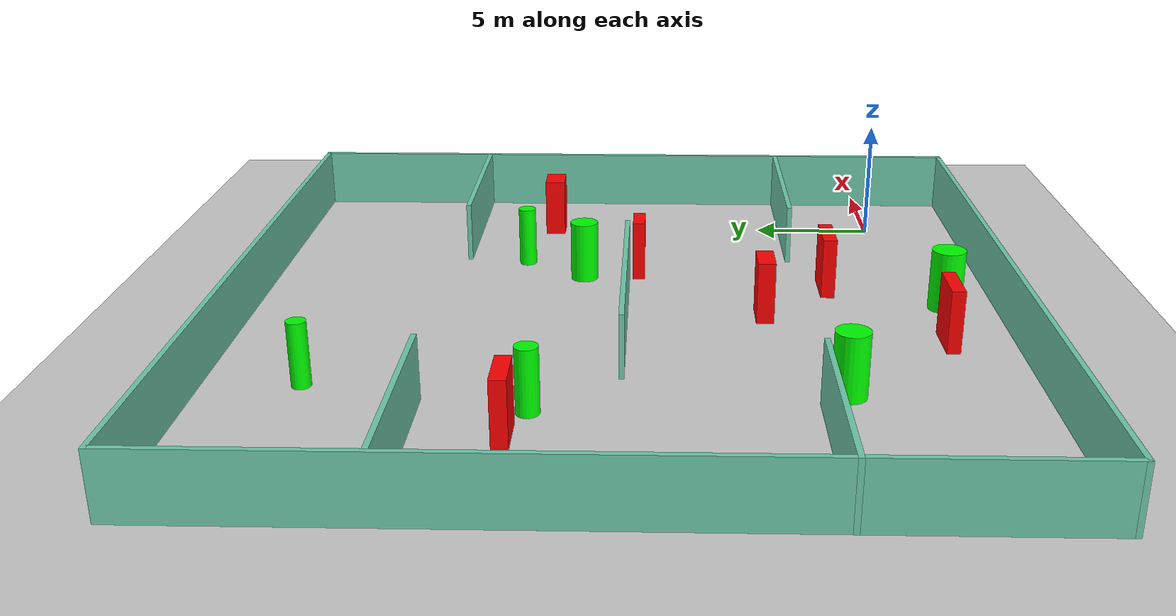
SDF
<sdf version="1.7">
 <world name="default">
  <light name="sun" type="directional">
   <pose>0 0 10 0 -0 0</pose>
   <diffuse>0.8 0.8 0.8 1</diffuse>
   <specular>0.2 0.2 0.2 1</specular>
   <attenuation>
    <range>1000</range>
    <constant>0.9</constant>
    <linear>0.01</linear>
    <quadratic>0.001</quadratic>
   </attenuation>
   <direction>-0.5 0.1 -0.9</direction>
   <spot><inner_angle>0</inner_angle><outer_angle>0</outer_angle><falloff>0</falloff></spot>
  </light>
  <model name="ground_plane">
   <static>1</static>
   <link name="link">
    <collision name="collision">
     <geometry><plane><normal>0 0 1</normal><size>100 100</size></plane></geometry>
     <surface>
      <contact><collide_bitmask>65535</collide_bitmask></contact>
      <friction><ode><mu>100</mu><mu2>50</mu2></ode></friction>
     </surface>
    </collision>
    <visual name="visual">
     <cast_shadows>0</cast_shadows>
     <geometry><plane><normal>0 0 1</normal><size>100 100</size></plane></geometry>
     <material>
      <script><uri>file://media/materials/scripts/gazebo.material</uri><name>Gazebo/Grey</name></script>
     </material>
    </visual>
   </link>
  </model>
  <gravity>0 0 -9.8</gravity>
  <magnetic_field>6e-06 2.3e-05 -4.2e-05</magnetic_field>
  <atmosphere type="adiabatic"/>
  <physics type="ode">
   <max_step_size>0.001</max_step_size>
   <real_time_factor>1</real_time_factor>
   <real_time_update_rate>1000</real_time_update_rate>
  </physics>
  <scene><ambient>0.4 0.4 0.4 1</ambient><background>0.7 0.7 0.7 1</background><shadows>1</shadows></scene>
  <spherical_coordinates>
   <surface_model>EARTH_WGS84</surface_model>
   <latitude_deg>0</latitude_deg>
   <longitude_deg>0</longitude_deg>
   <elevation>0</elevation>
   <heading_deg>0</heading_deg>
  </spherical_coordinates>
  <model name="my_base_walls">
   <link name="Wall_10">
    <collision name="Wall_10_Collision">
     <geometry><box><size>8.2 0.2 2.5</size></box></geometry>
     <pose>0 0 1.25 0 -0 0</pose>
    </collision>
    <visual name="Wall_10_Visual">
     <pose>0 0 1.25 0 -0 0</pose>
     <geometry><box><size>8.2 0.2 2.5</size></box></geometry>
     <material>
      <script><uri>file://media/materials/scripts/gazebo.material</uri><name>Gazebo/Grey</name></script>
      <ambient>0.435294 0.796078 0.67451 1</ambient>
     </material>
     <meta><layer>0</layer></meta>
    </visual>
    <pose>-11 -7 0 0 -0 0</pose>
   </link>
   <link name="Wall_12">
    <collision name="Wall_12_Collision">
     <geometry><box><size>8.2 0.2 2.5</size></box></geometry>
     <pose>0 0 1.25 0 -0 0</pose>
    </collision>
    <visual name="Wall_12_Visual">
     <pose>0 0 1.25 0 -0 0</pose>
     <geometry><box><size>8.2 0.2 2.5</size></box></geometry>
     <material>
      <script><uri>file://media/materials/scripts/gazebo.material</uri><name>Gazebo/Grey</name></script>
      <ambient>0.435294 0.796078 0.67451 1</ambient>
     </material>
     <meta><layer>0</layer></meta>
    </visual>
    <pose>-11 7 0 0 -0 0</pose>
   </link>
   <link name="Wall_14">
    <collision name="Wall_14_Collision">
     <geometry><box><size>8.2 0.2 2.5</size></box></geometry>
     <pose>0 0 1.25 0 -0 0</pose>
    </collision>
    <visual name="Wall_14_Visual">
     <pose>0 0 1.25 0 -0 0</pose>
     <geometry><box><size>8.2 0.2 2.5</size></box></geometry>
     <material>
      <script><uri>file://media/materials/scripts/gazebo.material</uri><name>Gazebo/Grey</name></script>
      <ambient>0.435294 0.796078 0.67451 1</ambient>
     </material>
     <meta><layer>0</layer></meta>
    </visual>
    <pose>11 7 0 0 -0 3.14159</pose>
   </link>
   <link name="Wall_16">
    <collision name="Wall_16_Collision">
     <geometry><box><size>10.2 0.2 2.5</size></box></geometry>
     <pose>0 0 1.25 0 -0 0</pose>
    </collision>
    <visual name="Wall_16_Visual">
     <pose>0 0 1.25 0 -0 0</pose>
     <geometry><box><size>10.2 0.2 2.5</size></box></geometry>
     <material>
      <script><uri>file://media/materials/scripts/gazebo.material</uri><name>Gazebo/Grey</name></script>
      <ambient>0.435294 0.796078 0.67451 1</ambient>
     </material>
     <meta><layer>0</layer></meta>
    </visual>
    <pose>0 0 0 0 -0 3.14159</pose>
   </link>
   <link name="Wall_2">
    <collision name="Wall_2_Collision">
     <geometry><box><size>30.2 0.2 2.5</size></box></geometry>
     <pose>0 0 1.25 0 -0 0</pose>
    </collision>
    <visual name="Wall_2_Visual">
     <pose>0 0 1.25 0 -0 0</pose>
     <geometry><box><size>30.2 0.2 2.5</size></box></geometry>
     <material>
      <script><uri>file://media/materials/scripts/gazebo.material</uri><name>Gazebo/Grey</name></script>
      <ambient>0.435294 0.796078 0.67451 1</ambient>
     </material>
     <meta><layer>0</layer></meta>
    </visual>
    <pose>0 -15 0 0 -0 3.14159</pose>
   </link>
   <link name="Wall_3">
    <collision name="Wall_3_Collision">
     <geometry><box><size>30.2 0.2 2.5</size></box></geometry>
     <pose>0 0 1.25 0 -0 0</pose>
    </collision>
    <visual name="Wall_3_Visual">
     <pose>0 0 1.25 0 -0 0</pose>
     <geometry><box><size>30.2 0.2 2.5</size></box></geometry>
     <material>
      <script><uri>file://media/materials/scripts/gazebo.material</uri><name>Gazebo/Grey</name></script>
      <ambient>0.435294 0.796078 0.67451 1</ambient>
     </material>
     <meta><layer>0</layer></meta>
    </visual>
    <pose>-15 0 0 0 -0 1.5708</pose>
   </link>
   <link name="Wall_4">
    <collision name="Wall_4_Collision">
     <geometry><box><size>30.2 0.2 2.5</size></box></geometry>
     <pose>0 0 1.25 0 -0 0</pose>
    </collision>
    <visual name="Wall_4_Visual">
     <pose>0 0 1.25 0 -0 0</pose>
     <geometry><box><size>30.2 0.2 2.5</size></box></geometry>
     <material>
      <script><uri>file://media/materials/scripts/gazebo.material</uri><name>Gazebo/Grey</name></script>
      <ambient>0.435294 0.796078 0.67451 1</ambient>
     </material>
     <meta><layer>0</layer></meta>
    </visual>
    <pose>0 15 0 0 -0 0</pose>
   </link>
   <link name="Wall_6">
    <collision name="Wall_6_Collision">
     <geometry><box><size>30.2 0.2 2.5</size></box></geometry>
     <pose>0 0 1.25 0 -0 0</pose>
    </collision>
    <visual name="Wall_6_Visual">
     <pose>0 0 1.25 0 -0 0</pose>
     <geometry><box><size>30.2 0.2 2.5</size></box></geometry>
     <material>
      <script><uri>file://media/materials/scripts/gazebo.material</uri><name>Gazebo/Grey</name></script>
      <ambient>0.435294 0.796078 0.67451 1</ambient>
     </material>
     <meta><layer>0</layer></meta>
    </visual>
    <pose>15 0 0 0 -0 1.5708</pose>
   </link>
   <link name="Wall_8">
    <collision name="Wall_8_Collision">
     <geometry><box><size>8.2 0.2 2.5</size></box></geometry>
     <pose>0 0 1.25 0 -0 0</pose>
    </collision>
    <visual name="Wall_8_Visual">
     <pose>0 0 1.25 0 -0 0</pose>
     <geometry><box><size>8.2 0.2 2.5</size></box></geometry>
     <material>
      <script><uri>file://media/materials/scripts/gazebo.material</uri><name>Gazebo/Grey</name></script>
      <ambient>0.435294 0.796078 0.67451 1</ambient>
     </material>
     <meta><layer>0</layer></meta>
    </visual>
    <pose>11 -7 0 0 -0 3.14159</pose>
   </link>
   <static>1</static>
   <pose>-11 11 0 0 -0 0</pose>
  </model>
  <model name="cylinder1">
   <static>1</static>
   <link name="link">
    <inertial>
     <mass>1</mass>
     <inertia><ixx>0.5</ixx><ixy>0</ixy><ixz>0</ixz><iyy>0.5</iyy><iyz>0</iyz><izz>1</izz></inertia>
    </inertial>
    <collision name="collision">
     <geometry><cylinder><radius>0.367069852013423</radius><length>2.5</length></cylinder></geometry>
    </collision>
    <visual name="visual">
     <geometry><cylinder><radius>0.367069852013423</radius><length>2.5</length></cylinder></geometry>
     <material>
      <ambient>0 1 0 1</ambient>
      <diffuse>0 1 0 1</diffuse>
      <specular>0.1 0.1 0.1 1</specular>
      <emissive>0 0 0 0</emissive>
     </material>
    </visual>
   </link>
   <pose>-4.448085351700758 15.397398276765575 1.25 0 0 0</pose>
  </model>
  <model name="cylinder2">
   <static>1</static>
   <link name="link">
    <inertial>
     <mass>1</mass>
     <inertia><ixx>0.5</ixx><ixy>0</ixy><ixz>0</ixz><iyy>0.5</iyy><iyz>0</iyz><izz>1</izz></inertia>
    </inertial>
    <collision name="collision">
     <geometry><cylinder><radius>0.362198303375764</radius><length>2.5</length></cylinder></geometry>
    </collision>
    <visual name="visual">
     <geometry><cylinder><radius>0.362198303375764</radius><length>2.5</length></cylinder></geometry>
     <material>
      <ambient>0 1 0 1</ambient>
      <diffuse>0 1 0 1</diffuse>
      <specular>0.1 0.1 0.1 1</specular>
      <emissive>0 0 0 0</emissive>
     </material>
    </visual>
   </link>
   <pose>-16.89805484482472 22.304167650159698 1.25 0 0 0</pose>
  </model>
  <model name="cylinder3">
   <static>1</static>
   <link name="link">
    <inertial>
     <mass>1</mass>
     <inertia><ixx>0.5</ixx><ixy>0</ixy><ixz>0</ixz><iyy>0.5</iyy><iyz>0</iyz><izz>1</izz></inertia>
    </inertial>
    <collision name="collision">
     <geometry><cylinder><radius>0.4285885763570805</radius><length>2.5</length></cylinder></geometry>
    </collision>
    <visual name="visual">
     <geometry><cylinder><radius>0.4285885763570805</radius><length>2.5</length></cylinder></geometry>
     <material>
      <ambient>0 1 0 1</ambient>
      <diffuse>0 1 0 1</diffuse>
      <specular>0.1 0.1 0.1 1</specular>
      <emissive>0 0 0 0</emissive>
     </material>
    </visual>
   </link>
   <pose>-18.79894298760866 14.098937882373633 1.25 0 0 0</pose>
  </model>
  <model name="cylinder4">
   <static>1</static>
   <link name="link">
    <inertial>
     <mass>1</mass>
     <inertia><ixx>0.5</ixx><ixy>0</ixy><ixz>0</ixz><iyy>0.5</iyy><iyz>0</iyz><izz>1</izz></inertia>
    </inertial>
    <collision name="collision">
     <geometry><cylinder><radius>0.6409084124452924</radius><length>2.5</length></cylinder></geometry>
    </collision>
    <visual name="visual">
     <geometry><cylinder><radius>0.6409084124452924</radius><length>2.5</length></cylinder></geometry>
     <material>
      <ambient>0 1 0 1</ambient>
      <diffuse>0 1 0 1</diffuse>
      <specular>0.1 0.1 0.1 1</specular>
      <emissive>0 0 0 0</emissive>
     </material>
    </visual>
   </link>
   <pose>-17.301324212657303 3.0287428750485006 1.25 0 0 0</pose>
  </model>
  <model name="cylinder5">
   <static>1</static>
   <link name="link">
    <inertial>
     <mass>1</mass>
     <inertia><ixx>0.5</ixx><ixy>0</ixy><ixz>0</ixz><iyy>0.5</iyy><iyz>0</iyz><izz>1</izz></inertia>
    </inertial>
    <collision name="collision">
     <geometry><cylinder><radius>0.674724251356913</radius><length>2.5</length></cylinder></geometry>
    </collision>
    <visual name="visual">
     <geometry><cylinder><radius>0.674724251356913</radius><length>2.5</length></cylinder></geometry>
     <material>
      <ambient>0 1 0 1</ambient>
      <diffuse>0 1 0 1</diffuse>
      <specular>0.1 0.1 0.1 1</specular>
      <emissive>0 0 0 0</emissive>
     </material>
    </visual>
   </link>
   <pose>-9.197245906305154 -1.875480348172966 1.25 0 0 0</pose>
  </model>
  <model name="cylinder6">
   <static>1</static>
   <link name="link">
    <inertial>
     <mass>1</mass>
     <inertia><ixx>0.5</ixx><ixy>0</ixy><ixz>0</ixz><iyy>0.5</iyy><iyz>0</iyz><izz>1</izz></inertia>
    </inertial>
    <collision name="collision">
     <geometry><cylinder><radius>0.5736063476227147</radius><length>2.5</length></cylinder></geometry>
    </collision>
    <visual name="visual">
     <geometry><cylinder><radius>0.5736063476227147</radius><length>2.5</length></cylinder></geometry>
     <material>
      <ambient>0 1 0 1</ambient>
      <diffuse>0 1 0 1</diffuse>
      <specular>0.1 0.1 0.1 1</specular>
      <emissive>0 0 0 0</emissive>
     </material>
    </visual>
   </link>
   <pose>-6.184313187044964 12.823459721345811 1.25 0 0 0</pose>
  </model>
  <model name="box1">
   <static>1</static>
   <link name="link">
    <inertial>
     <mass>1</mass>
     <inertia><ixx>0.083</ixx><ixy>0</ixy><ixz>0</ixz><iyy>0.083</iyy><iyz>0</iyz><izz>0.083</izz></inertia>
    </inertial>
    <collision name="collision">
     <geometry><box><size>1.9961732961989473 0.5317395829629565 2.5</size></box></geometry>
    </collision>
    <visual name="visual">
     <geometry><box><size>1.9961732961989473 0.5317395829629565 2.5</size></box></geometry>
     <material>
      <ambient>1 0 0 1</ambient>
      <diffuse>1 0 0 1</diffuse>
      <specular>0.1 0.1 0.1 1</specular>
      <emissive>0 0 0 0</emissive>
     </material>
    </visual>
    <sensor name="my_contact" type="contact">
     <contact><collision>box_collision</collision><topic>__default_topic__</topic></contact>
    </sensor>
   </link>
   <pose>-12.674665646676951 -1.3369426640033923 1.25 0 0 0</pose>
  </model>
  <model name="box2">
   <static>1</static>
   <link name="link">
    <inertial>
     <mass>1</mass>
     <inertia><ixx>0.083</ixx><ixy>0</ixy><ixz>0</ixz><iyy>0.083</iyy><iyz>0</iyz><izz>0.083</izz></inertia>
    </inertial>
    <collision name="collision">
     <geometry><box><size>1.4977476039321345 0.6974433565123367 2.5</size></box></geometry>
    </collision>
    <visual name="visual">
     <geometry><box><size>1.4977476039321345 0.6974433565123367 2.5</size></box></geometry>
     <material>
      <ambient>1 0 0 1</ambient>
      <diffuse>1 0 0 1</diffuse>
      <specular>0.1 0.1 0.1 1</specular>
      <emissive>0 0 0 0</emissive>
     </material>
    </visual>
    <sensor name="my_contact" type="contact">
     <contact><collision>box_collision</collision><topic>__default_topic__</topic></contact>
    </sensor>
   </link>
   <pose>-10.252880223473841 5.483111629689446 1.25 0 0 0</pose>
  </model>
  <model name="box3">
   <static>1</static>
   <link name="link">
    <inertial>
     <mass>1</mass>
     <inertia><ixx>0.083</ixx><ixy>0</ixy><ixz>0</ixz><iyy>0.083</iyy><iyz>0</iyz><izz>0.083</izz></inertia>
    </inertial>
    <collision name="collision">
     <geometry><box><size>1.3670193324697553 0.5068722257663973 2.5</size></box></geometry>
    </collision>
    <visual name="visual">
     <geometry><box><size>1.3670193324697553 0.5068722257663973 2.5</size></box></geometry>
     <material>
      <ambient>1 0 0 1</ambient>
      <diffuse>1 0 0 1</diffuse>
      <specular>0.1 0.1 0.1 1</specular>
      <emissive>0 0 0 0</emissive>
     </material>
    </visual>
    <sensor name="my_contact" type="contact">
     <contact><collision>box_collision</collision><topic>__default_topic__</topic></contact>
    </sensor>
   </link>
   <pose>-5.628456962858753 10.510572991885917 1.25 0 0 0</pose>
  </model>
  <model name="box4">
   <static>1</static>
   <link name="link">
    <inertial>
     <mass>1</mass>
     <inertia><ixx>0.083</ixx><ixy>0</ixy><ixz>0</ixz><iyy>0.083</iyy><iyz>0</iyz><izz>0.083</izz></inertia>
    </inertial>
    <collision name="collision">
     <geometry><box><size>1.346499112795014 0.8647912054107886 2.5</size></box></geometry>
    </collision>
    <visual name="visual">
     <geometry><box><size>1.346499112795014 0.8647912054107886 2.5</size></box></geometry>
     <material>
      <ambient>1 0 0 1</ambient>
      <diffuse>1 0 0 1</diffuse>
      <specular>0.1 0.1 0.1 1</specular>
      <emissive>0 0 0 0</emissive>
     </material>
    </visual>
    <sensor name="my_contact" type="contact">
     <contact><collision>box_collision</collision><topic>__default_topic__</topic></contact>
    </sensor>
   </link>
   <pose>-0.004142734505567347 14.467035596267845 1.25 0 0 0</pose>
  </model>
  <model name="box5">
   <static>1</static>
   <link name="link">
    <inertial>
     <mass>1</mass>
     <inertia><ixx>0.083</ixx><ixy>0</ixy><ixz>0</ixz><iyy>0.083</iyy><iyz>0</iyz><izz>0.083</izz></inertia>
    </inertial>
    <collision name="collision">
     <geometry><box><size>2.0549464020290444 0.5621148098704136 2.5</size></box></geometry>
    </collision>
    <visual name="visual">
     <geometry><box><size>2.0549464020290444 0.5621148098704136 2.5</size></box></geometry>
     <material>
      <ambient>1 0 0 1</ambient>
      <diffuse>1 0 0 1</diffuse>
      <specular>0.1 0.1 0.1 1</specular>
      <emissive>0 0 0 0</emissive>
     </material>
    </visual>
    <sensor name="my_contact" type="contact">
     <contact><collision>box_collision</collision><topic>__default_topic__</topic></contact>
    </sensor>
   </link>
   <pose>-7.232169273002665 2.716874320109145 1.25 0 0 0</pose>
  </model>
  <model name="box6">
   <static>1</static>
   <link name="link">
    <inertial>
     <mass>1</mass>
     <inertia><ixx>0.083</ixx><ixy>0</ixy><ixz>0</ixz><iyy>0.083</iyy><iyz>0</iyz><izz>0.083</izz></inertia>
    </inertial>
    <collision name="collision">
     <geometry><box><size>1.8988847281944734 0.5925408261222181 2.5</size></box></geometry>
    </collision>
    <visual name="visual">
     <geometry><box><size>1.8988847281944734 0.5925408261222181 2.5</size></box></geometry>
     <material>
      <ambient>1 0 0 1</ambient>
      <diffuse>1 0 0 1</diffuse>
      <specular>0.1 0.1 0.1 1</specular>
      <emissive>0 0 0 0</emissive>
     </material>
    </visual>
    <sensor name="my_contact" type="contact">
     <contact><collision>box_collision</collision><topic>__default_topic__</topic></contact>
    </sensor>
   </link>
   <pose>-20.492026176816317 14.767637550585313 1.25 0 0 0</pose>
  </model>
 </world>
</sdf>
